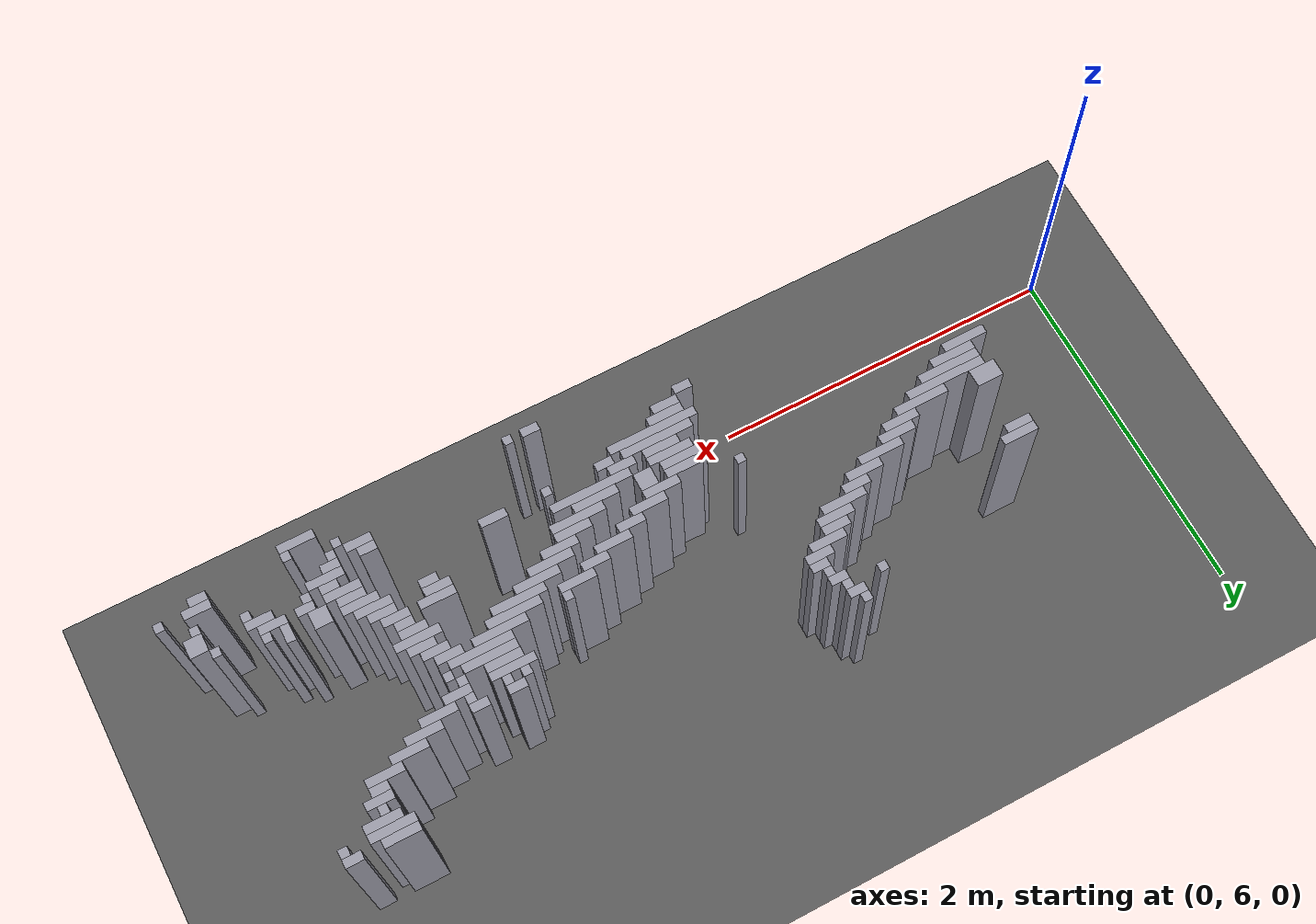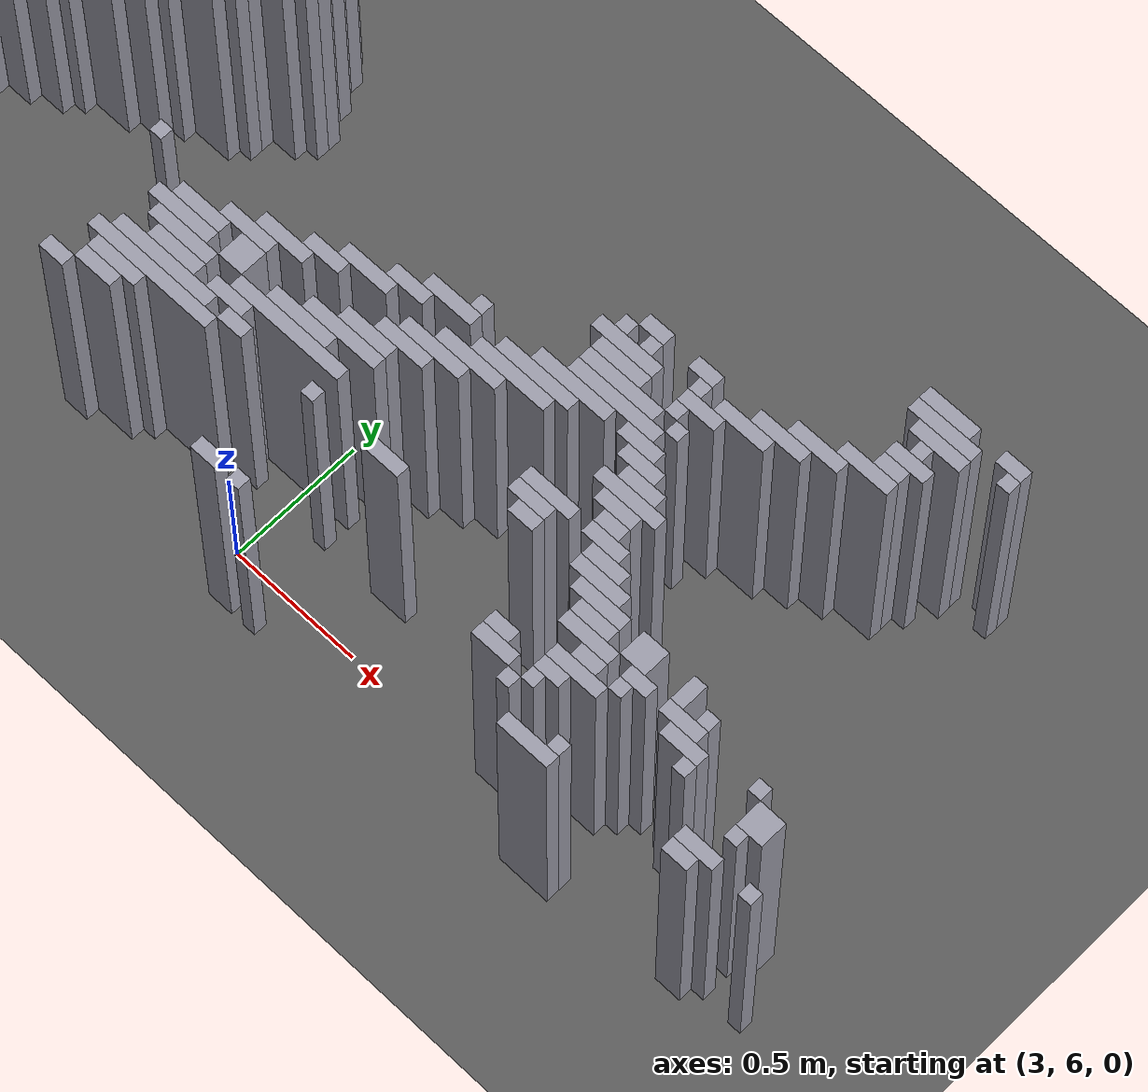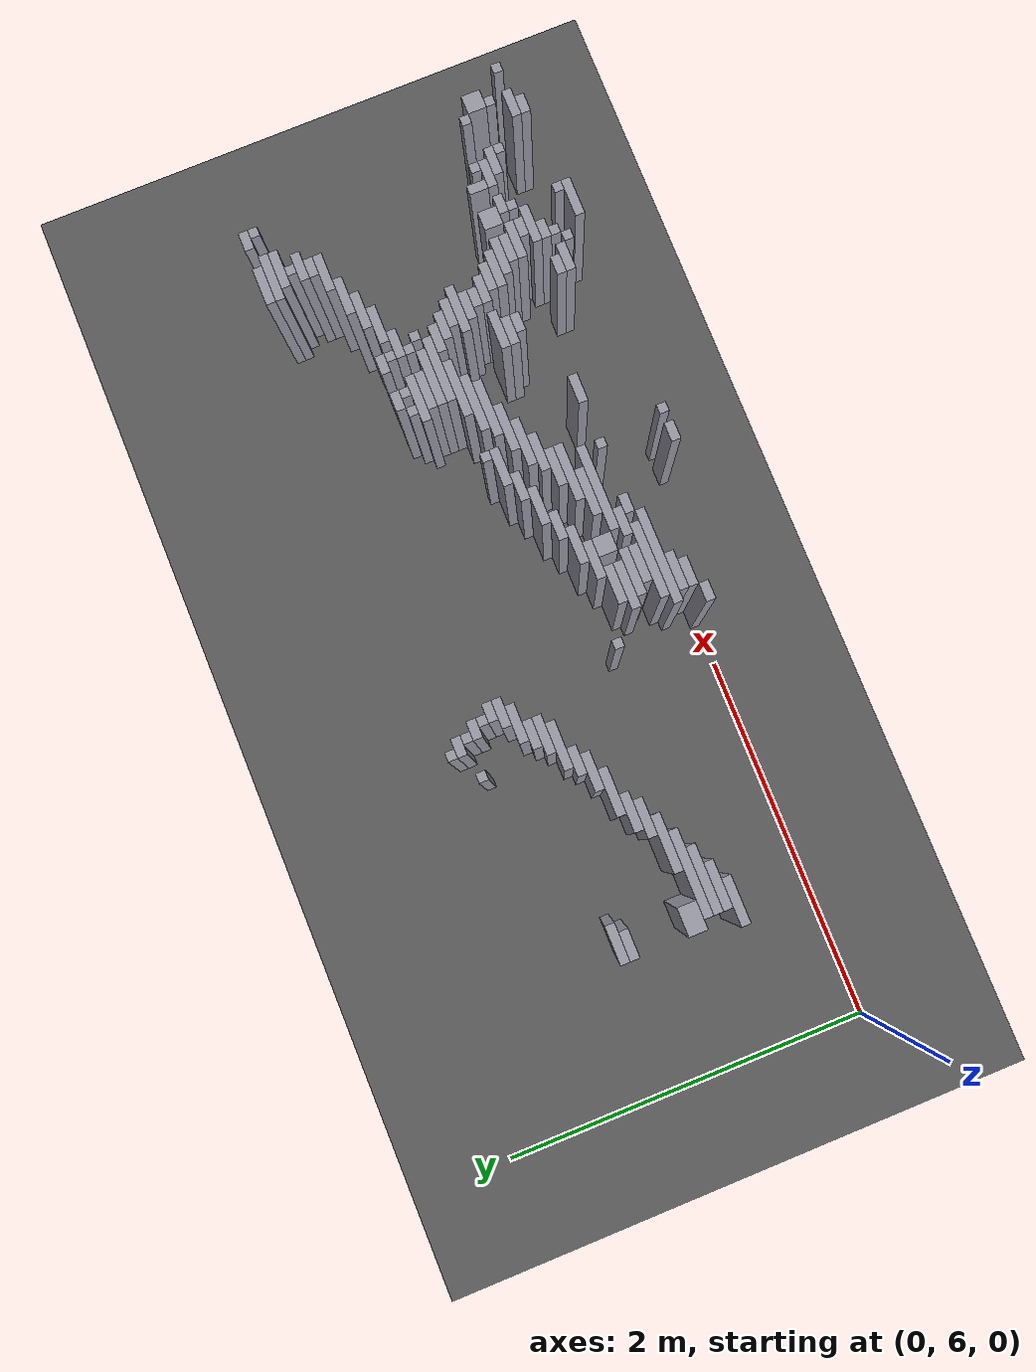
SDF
<sdf version="1.8">
 <world name="dimi">
  <model name="ground">
   <static>true</static>
   <link name="ground_link">
    <collision name="c"><geometry><plane><normal>0 0 1</normal><size>60 60</size></plane></geometry></collision>
    <visual name="v">
     <geometry><plane><normal>0 0 1</normal><size>60 60</size></plane></geometry>
     <material><ambient>0.3 0.3 0.3 1</ambient><diffuse>0.35 0.35 0.35 1</diffuse></material>
    </visual>
   </link>
  </model>
  <model name="walls">
   <static>true</static>
   <link name="wall_292">
    <pose>2.0080 7.4700 0.5000 0 0 0</pose>
    <collision name="c"><geometry><box><size>0.0500 0.0500 1.0000</size></box></geometry></collision>
    <visual name="v">
     <geometry><box><size>0.0500 0.0500 1.0000</size></box></geometry>
     <material><ambient>0.5 0.5 0.55 1</ambient><diffuse>0.6 0.6 0.65 1</diffuse></material>
    </visual>
   </link>
   <link name="wall_293">
    <pose>4.5330 7.4700 0.5000 0 0 0</pose>
    <collision name="c"><geometry><box><size>0.2000 0.0500 1.0000</size></box></geometry></collision>
    <visual name="v">
     <geometry><box><size>0.2000 0.0500 1.0000</size></box></geometry>
     <material><ambient>0.5 0.5 0.55 1</ambient><diffuse>0.6 0.6 0.65 1</diffuse></material>
    </visual>
   </link>
   <link name="wall_294">
    <pose>4.7830 7.4700 0.5000 0 0 0</pose>
    <collision name="c"><geometry><box><size>0.1000 0.0500 1.0000</size></box></geometry></collision>
    <visual name="v">
     <geometry><box><size>0.1000 0.0500 1.0000</size></box></geometry>
     <material><ambient>0.5 0.5 0.55 1</ambient><diffuse>0.6 0.6 0.65 1</diffuse></material>
    </visual>
   </link>
   <link name="wall_300">
    <pose>2.0330 7.4200 0.5000 0 0 0</pose>
    <collision name="c"><geometry><box><size>0.1000 0.0500 1.0000</size></box></geometry></collision>
    <visual name="v">
     <geometry><box><size>0.1000 0.0500 1.0000</size></box></geometry>
     <material><ambient>0.5 0.5 0.55 1</ambient><diffuse>0.6 0.6 0.65 1</diffuse></material>
    </visual>
   </link>
   <link name="wall_301">
    <pose>4.5580 7.4200 0.5000 0 0 0</pose>
    <collision name="c"><geometry><box><size>0.2500 0.0500 1.0000</size></box></geometry></collision>
    <visual name="v">
     <geometry><box><size>0.2500 0.0500 1.0000</size></box></geometry>
     <material><ambient>0.5 0.5 0.55 1</ambient><diffuse>0.6 0.6 0.65 1</diffuse></material>
    </visual>
   </link>
   <link name="wall_302">
    <pose>4.8080 7.4200 0.5000 0 0 0</pose>
    <collision name="c"><geometry><box><size>0.0500 0.0500 1.0000</size></box></geometry></collision>
    <visual name="v">
     <geometry><box><size>0.0500 0.0500 1.0000</size></box></geometry>
     <material><ambient>0.5 0.5 0.55 1</ambient><diffuse>0.6 0.6 0.65 1</diffuse></material>
    </visual>
   </link>
   <link name="wall_305">
    <pose>1.8580 7.3700 0.5000 0 0 0</pose>
    <collision name="c"><geometry><box><size>0.0500 0.0500 1.0000</size></box></geometry></collision>
    <visual name="v">
     <geometry><box><size>0.0500 0.0500 1.0000</size></box></geometry>
     <material><ambient>0.5 0.5 0.55 1</ambient><diffuse>0.6 0.6 0.65 1</diffuse></material>
    </visual>
   </link>
   <link name="wall_306">
    <pose>2.0580 7.3700 0.5000 0 0 0</pose>
    <collision name="c"><geometry><box><size>0.0500 0.0500 1.0000</size></box></geometry></collision>
    <visual name="v">
     <geometry><box><size>0.0500 0.0500 1.0000</size></box></geometry>
     <material><ambient>0.5 0.5 0.55 1</ambient><diffuse>0.6 0.6 0.65 1</diffuse></material>
    </visual>
   </link>
   <link name="wall_307">
    <pose>4.5830 7.3700 0.5000 0 0 0</pose>
    <collision name="c"><geometry><box><size>0.2000 0.0500 1.0000</size></box></geometry></collision>
    <visual name="v">
     <geometry><box><size>0.2000 0.0500 1.0000</size></box></geometry>
     <material><ambient>0.5 0.5 0.55 1</ambient><diffuse>0.6 0.6 0.65 1</diffuse></material>
    </visual>
   </link>
   <link name="wall_313">
    <pose>2.0830 7.3200 0.5000 0 0 0</pose>
    <collision name="c"><geometry><box><size>0.1000 0.0500 1.0000</size></box></geometry></collision>
    <visual name="v">
     <geometry><box><size>0.1000 0.0500 1.0000</size></box></geometry>
     <material><ambient>0.5 0.5 0.55 1</ambient><diffuse>0.6 0.6 0.65 1</diffuse></material>
    </visual>
   </link>
   <link name="wall_314">
    <pose>4.5580 7.3200 0.5000 0 0 0</pose>
    <collision name="c"><geometry><box><size>0.0500 0.0500 1.0000</size></box></geometry></collision>
    <visual name="v">
     <geometry><box><size>0.0500 0.0500 1.0000</size></box></geometry>
     <material><ambient>0.5 0.5 0.55 1</ambient><diffuse>0.6 0.6 0.65 1</diffuse></material>
    </visual>
   </link>
   <link name="wall_319">
    <pose>2.1080 7.2700 0.5000 0 0 0</pose>
    <collision name="c"><geometry><box><size>0.0500 0.0500 1.0000</size></box></geometry></collision>
    <visual name="v">
     <geometry><box><size>0.0500 0.0500 1.0000</size></box></geometry>
     <material><ambient>0.5 0.5 0.55 1</ambient><diffuse>0.6 0.6 0.65 1</diffuse></material>
    </visual>
   </link>
   <link name="wall_320">
    <pose>4.5580 7.2700 0.5000 0 0 0</pose>
    <collision name="c"><geometry><box><size>0.1500 0.0500 1.0000</size></box></geometry></collision>
    <visual name="v">
     <geometry><box><size>0.1500 0.0500 1.0000</size></box></geometry>
     <material><ambient>0.5 0.5 0.55 1</ambient><diffuse>0.6 0.6 0.65 1</diffuse></material>
    </visual>
   </link>
   <link name="wall_324">
    <pose>2.1330 7.2200 0.5000 0 0 0</pose>
    <collision name="c"><geometry><box><size>0.1000 0.0500 1.0000</size></box></geometry></collision>
    <visual name="v">
     <geometry><box><size>0.1000 0.0500 1.0000</size></box></geometry>
     <material><ambient>0.5 0.5 0.55 1</ambient><diffuse>0.6 0.6 0.65 1</diffuse></material>
    </visual>
   </link>
   <link name="wall_325">
    <pose>4.5330 7.2200 0.5000 0 0 0</pose>
    <collision name="c"><geometry><box><size>0.1000 0.0500 1.0000</size></box></geometry></collision>
    <visual name="v">
     <geometry><box><size>0.1000 0.0500 1.0000</size></box></geometry>
     <material><ambient>0.5 0.5 0.55 1</ambient><diffuse>0.6 0.6 0.65 1</diffuse></material>
    </visual>
   </link>
   <link name="wall_331">
    <pose>2.1080 7.1700 0.5000 0 0 0</pose>
    <collision name="c"><geometry><box><size>0.1500 0.0500 1.0000</size></box></geometry></collision>
    <visual name="v">
     <geometry><box><size>0.1500 0.0500 1.0000</size></box></geometry>
     <material><ambient>0.5 0.5 0.55 1</ambient><diffuse>0.6 0.6 0.65 1</diffuse></material>
    </visual>
   </link>
   <link name="wall_332">
    <pose>4.4830 7.1700 0.5000 0 0 0</pose>
    <collision name="c"><geometry><box><size>0.2000 0.0500 1.0000</size></box></geometry></collision>
    <visual name="v">
     <geometry><box><size>0.2000 0.0500 1.0000</size></box></geometry>
     <material><ambient>0.5 0.5 0.55 1</ambient><diffuse>0.6 0.6 0.65 1</diffuse></material>
    </visual>
   </link>
   <link name="wall_334">
    <pose>2.0330 7.1200 0.5000 0 0 0</pose>
    <collision name="c"><geometry><box><size>0.2000 0.0500 1.0000</size></box></geometry></collision>
    <visual name="v">
     <geometry><box><size>0.2000 0.0500 1.0000</size></box></geometry>
     <material><ambient>0.5 0.5 0.55 1</ambient><diffuse>0.6 0.6 0.65 1</diffuse></material>
    </visual>
   </link>
   <link name="wall_335">
    <pose>4.3330 7.1200 0.5000 0 0 0</pose>
    <collision name="c"><geometry><box><size>0.2000 0.0500 1.0000</size></box></geometry></collision>
    <visual name="v">
     <geometry><box><size>0.2000 0.0500 1.0000</size></box></geometry>
     <material><ambient>0.5 0.5 0.55 1</ambient><diffuse>0.6 0.6 0.65 1</diffuse></material>
    </visual>
   </link>
   <link name="wall_338">
    <pose>0.8830 7.0700 0.5000 0 0 0</pose>
    <collision name="c"><geometry><box><size>0.2000 0.0500 1.0000</size></box></geometry></collision>
    <visual name="v">
     <geometry><box><size>0.2000 0.0500 1.0000</size></box></geometry>
     <material><ambient>0.5 0.5 0.55 1</ambient><diffuse>0.6 0.6 0.65 1</diffuse></material>
    </visual>
   </link>
   <link name="wall_339">
    <pose>1.9580 7.0700 0.5000 0 0 0</pose>
    <collision name="c"><geometry><box><size>0.1500 0.0500 1.0000</size></box></geometry></collision>
    <visual name="v">
     <geometry><box><size>0.1500 0.0500 1.0000</size></box></geometry>
     <material><ambient>0.5 0.5 0.55 1</ambient><diffuse>0.6 0.6 0.65 1</diffuse></material>
    </visual>
   </link>
   <link name="wall_340">
    <pose>3.7330 7.0700 0.5000 0 0 0</pose>
    <collision name="c"><geometry><box><size>0.1000 0.0500 1.0000</size></box></geometry></collision>
    <visual name="v">
     <geometry><box><size>0.1000 0.0500 1.0000</size></box></geometry>
     <material><ambient>0.5 0.5 0.55 1</ambient><diffuse>0.6 0.6 0.65 1</diffuse></material>
    </visual>
   </link>
   <link name="wall_341">
    <pose>3.9330 7.0700 0.5000 0 0 0</pose>
    <collision name="c"><geometry><box><size>0.1000 0.0500 1.0000</size></box></geometry></collision>
    <visual name="v">
     <geometry><box><size>0.1000 0.0500 1.0000</size></box></geometry>
     <material><ambient>0.5 0.5 0.55 1</ambient><diffuse>0.6 0.6 0.65 1</diffuse></material>
    </visual>
   </link>
   <link name="wall_342">
    <pose>4.2330 7.0700 0.5000 0 0 0</pose>
    <collision name="c"><geometry><box><size>0.2000 0.0500 1.0000</size></box></geometry></collision>
    <visual name="v">
     <geometry><box><size>0.2000 0.0500 1.0000</size></box></geometry>
     <material><ambient>0.5 0.5 0.55 1</ambient><diffuse>0.6 0.6 0.65 1</diffuse></material>
    </visual>
   </link>
   <link name="wall_348">
    <pose>0.8580 7.0200 0.5000 0 0 0</pose>
    <collision name="c"><geometry><box><size>0.1500 0.0500 1.0000</size></box></geometry></collision>
    <visual name="v">
     <geometry><box><size>0.1500 0.0500 1.0000</size></box></geometry>
     <material><ambient>0.5 0.5 0.55 1</ambient><diffuse>0.6 0.6 0.65 1</diffuse></material>
    </visual>
   </link>
   <link name="wall_349">
    <pose>1.9330 7.0200 0.5000 0 0 0</pose>
    <collision name="c"><geometry><box><size>0.2000 0.0500 1.0000</size></box></geometry></collision>
    <visual name="v">
     <geometry><box><size>0.2000 0.0500 1.0000</size></box></geometry>
     <material><ambient>0.5 0.5 0.55 1</ambient><diffuse>0.6 0.6 0.65 1</diffuse></material>
    </visual>
   </link>
   <link name="wall_350">
    <pose>3.6580 7.0200 0.5000 0 0 0</pose>
    <collision name="c"><geometry><box><size>0.0500 0.0500 1.0000</size></box></geometry></collision>
    <visual name="v">
     <geometry><box><size>0.0500 0.0500 1.0000</size></box></geometry>
     <material><ambient>0.5 0.5 0.55 1</ambient><diffuse>0.6 0.6 0.65 1</diffuse></material>
    </visual>
   </link>
   <link name="wall_351">
    <pose>3.7580 7.0200 0.5000 0 0 0</pose>
    <collision name="c"><geometry><box><size>0.0500 0.0500 1.0000</size></box></geometry></collision>
    <visual name="v">
     <geometry><box><size>0.0500 0.0500 1.0000</size></box></geometry>
     <material><ambient>0.5 0.5 0.55 1</ambient><diffuse>0.6 0.6 0.65 1</diffuse></material>
    </visual>
   </link>
   <link name="wall_352">
    <pose>3.9580 7.0200 0.5000 0 0 0</pose>
    <collision name="c"><geometry><box><size>0.0500 0.0500 1.0000</size></box></geometry></collision>
    <visual name="v">
     <geometry><box><size>0.0500 0.0500 1.0000</size></box></geometry>
     <material><ambient>0.5 0.5 0.55 1</ambient><diffuse>0.6 0.6 0.65 1</diffuse></material>
    </visual>
   </link>
   <link name="wall_353">
    <pose>4.1330 7.0200 0.5000 0 0 0</pose>
    <collision name="c"><geometry><box><size>0.2000 0.0500 1.0000</size></box></geometry></collision>
    <visual name="v">
     <geometry><box><size>0.2000 0.0500 1.0000</size></box></geometry>
     <material><ambient>0.5 0.5 0.55 1</ambient><diffuse>0.6 0.6 0.65 1</diffuse></material>
    </visual>
   </link>
   <link name="wall_360">
    <pose>1.8580 6.9700 0.5000 0 0 0</pose>
    <collision name="c"><geometry><box><size>0.2500 0.0500 1.0000</size></box></geometry></collision>
    <visual name="v">
     <geometry><box><size>0.2500 0.0500 1.0000</size></box></geometry>
     <material><ambient>0.5 0.5 0.55 1</ambient><diffuse>0.6 0.6 0.65 1</diffuse></material>
    </visual>
   </link>
   <link name="wall_361">
    <pose>3.7080 6.9700 0.5000 0 0 0</pose>
    <collision name="c"><geometry><box><size>0.2500 0.0500 1.0000</size></box></geometry></collision>
    <visual name="v">
     <geometry><box><size>0.2500 0.0500 1.0000</size></box></geometry>
     <material><ambient>0.5 0.5 0.55 1</ambient><diffuse>0.6 0.6 0.65 1</diffuse></material>
    </visual>
   </link>
   <link name="wall_362">
    <pose>4.0080 6.9700 0.5000 0 0 0</pose>
    <collision name="c"><geometry><box><size>0.1500 0.0500 1.0000</size></box></geometry></collision>
    <visual name="v">
     <geometry><box><size>0.1500 0.0500 1.0000</size></box></geometry>
     <material><ambient>0.5 0.5 0.55 1</ambient><diffuse>0.6 0.6 0.65 1</diffuse></material>
    </visual>
   </link>
   <link name="wall_368">
    <pose>1.7580 6.9200 0.5000 0 0 0</pose>
    <collision name="c"><geometry><box><size>0.1500 0.0500 1.0000</size></box></geometry></collision>
    <visual name="v">
     <geometry><box><size>0.1500 0.0500 1.0000</size></box></geometry>
     <material><ambient>0.5 0.5 0.55 1</ambient><diffuse>0.6 0.6 0.65 1</diffuse></material>
    </visual>
   </link>
   <link name="wall_369">
    <pose>3.7330 6.9200 0.5000 0 0 0</pose>
    <collision name="c"><geometry><box><size>0.2000 0.0500 1.0000</size></box></geometry></collision>
    <visual name="v">
     <geometry><box><size>0.2000 0.0500 1.0000</size></box></geometry>
     <material><ambient>0.5 0.5 0.55 1</ambient><diffuse>0.6 0.6 0.65 1</diffuse></material>
    </visual>
   </link>
   <link name="wall_370">
    <pose>3.9580 6.9200 0.5000 0 0 0</pose>
    <collision name="c"><geometry><box><size>0.0500 0.0500 1.0000</size></box></geometry></collision>
    <visual name="v">
     <geometry><box><size>0.0500 0.0500 1.0000</size></box></geometry>
     <material><ambient>0.5 0.5 0.55 1</ambient><diffuse>0.6 0.6 0.65 1</diffuse></material>
    </visual>
   </link>
   <link name="wall_374">
    <pose>1.6830 6.8700 0.5000 0 0 0</pose>
    <collision name="c"><geometry><box><size>0.2000 0.0500 1.0000</size></box></geometry></collision>
    <visual name="v">
     <geometry><box><size>0.2000 0.0500 1.0000</size></box></geometry>
     <material><ambient>0.5 0.5 0.55 1</ambient><diffuse>0.6 0.6 0.65 1</diffuse></material>
    </visual>
   </link>
   <link name="wall_375">
    <pose>3.7830 6.8700 0.5000 0 0 0</pose>
    <collision name="c"><geometry><box><size>0.3000 0.0500 1.0000</size></box></geometry></collision>
    <visual name="v">
     <geometry><box><size>0.3000 0.0500 1.0000</size></box></geometry>
     <material><ambient>0.5 0.5 0.55 1</ambient><diffuse>0.6 0.6 0.65 1</diffuse></material>
    </visual>
   </link>
   <link name="wall_376">
    <pose>4.0080 6.8700 0.5000 0 0 0</pose>
    <collision name="c"><geometry><box><size>0.0500 0.0500 1.0000</size></box></geometry></collision>
    <visual name="v">
     <geometry><box><size>0.0500 0.0500 1.0000</size></box></geometry>
     <material><ambient>0.5 0.5 0.55 1</ambient><diffuse>0.6 0.6 0.65 1</diffuse></material>
    </visual>
   </link>
   <link name="wall_382">
    <pose>1.5580 6.8200 0.5000 0 0 0</pose>
    <collision name="c"><geometry><box><size>0.2500 0.0500 1.0000</size></box></geometry></collision>
    <visual name="v">
     <geometry><box><size>0.2500 0.0500 1.0000</size></box></geometry>
     <material><ambient>0.5 0.5 0.55 1</ambient><diffuse>0.6 0.6 0.65 1</diffuse></material>
    </visual>
   </link>
   <link name="wall_383">
    <pose>3.8080 6.8200 0.5000 0 0 0</pose>
    <collision name="c"><geometry><box><size>0.3500 0.0500 1.0000</size></box></geometry></collision>
    <visual name="v">
     <geometry><box><size>0.3500 0.0500 1.0000</size></box></geometry>
     <material><ambient>0.5 0.5 0.55 1</ambient><diffuse>0.6 0.6 0.65 1</diffuse></material>
    </visual>
   </link>
   <link name="wall_388">
    <pose>1.4330 6.7700 0.5000 0 0 0</pose>
    <collision name="c"><geometry><box><size>0.2000 0.0500 1.0000</size></box></geometry></collision>
    <visual name="v">
     <geometry><box><size>0.2000 0.0500 1.0000</size></box></geometry>
     <material><ambient>0.5 0.5 0.55 1</ambient><diffuse>0.6 0.6 0.65 1</diffuse></material>
    </visual>
   </link>
   <link name="wall_389">
    <pose>3.3080 6.7700 0.5000 0 0 0</pose>
    <collision name="c"><geometry><box><size>0.0500 0.0500 1.0000</size></box></geometry></collision>
    <visual name="v">
     <geometry><box><size>0.0500 0.0500 1.0000</size></box></geometry>
     <material><ambient>0.5 0.5 0.55 1</ambient><diffuse>0.6 0.6 0.65 1</diffuse></material>
    </visual>
   </link>
   <link name="wall_390">
    <pose>3.6830 6.7700 0.5000 0 0 0</pose>
    <collision name="c"><geometry><box><size>0.3000 0.0500 1.0000</size></box></geometry></collision>
    <visual name="v">
     <geometry><box><size>0.3000 0.0500 1.0000</size></box></geometry>
     <material><ambient>0.5 0.5 0.55 1</ambient><diffuse>0.6 0.6 0.65 1</diffuse></material>
    </visual>
   </link>
   <link name="wall_391">
    <pose>3.9580 6.7700 0.5000 0 0 0</pose>
    <collision name="c"><geometry><box><size>0.1500 0.0500 1.0000</size></box></geometry></collision>
    <visual name="v">
     <geometry><box><size>0.1500 0.0500 1.0000</size></box></geometry>
     <material><ambient>0.5 0.5 0.55 1</ambient><diffuse>0.6 0.6 0.65 1</diffuse></material>
    </visual>
   </link>
   <link name="wall_397">
    <pose>0.8580 6.6950 0.5000 0 0 0</pose>
    <collision name="c"><geometry><box><size>0.1500 0.1000 1.0000</size></box></geometry></collision>
    <visual name="v">
     <geometry><box><size>0.1500 0.1000 1.0000</size></box></geometry>
     <material><ambient>0.5 0.5 0.55 1</ambient><diffuse>0.6 0.6 0.65 1</diffuse></material>
    </visual>
   </link>
   <link name="wall_398">
    <pose>1.3830 6.7200 0.5000 0 0 0</pose>
    <collision name="c"><geometry><box><size>0.2000 0.0500 1.0000</size></box></geometry></collision>
    <visual name="v">
     <geometry><box><size>0.2000 0.0500 1.0000</size></box></geometry>
     <material><ambient>0.5 0.5 0.55 1</ambient><diffuse>0.6 0.6 0.65 1</diffuse></material>
    </visual>
   </link>
   <link name="wall_399">
    <pose>3.2330 6.7200 0.5000 0 0 0</pose>
    <collision name="c"><geometry><box><size>0.2000 0.0500 1.0000</size></box></geometry></collision>
    <visual name="v">
     <geometry><box><size>0.2000 0.0500 1.0000</size></box></geometry>
     <material><ambient>0.5 0.5 0.55 1</ambient><diffuse>0.6 0.6 0.65 1</diffuse></material>
    </visual>
   </link>
   <link name="wall_400">
    <pose>3.5830 6.7200 0.5000 0 0 0</pose>
    <collision name="c"><geometry><box><size>0.3000 0.0500 1.0000</size></box></geometry></collision>
    <visual name="v">
     <geometry><box><size>0.3000 0.0500 1.0000</size></box></geometry>
     <material><ambient>0.5 0.5 0.55 1</ambient><diffuse>0.6 0.6 0.65 1</diffuse></material>
    </visual>
   </link>
   <link name="wall_401">
    <pose>4.0080 6.7200 0.5000 0 0 0</pose>
    <collision name="c"><geometry><box><size>0.1500 0.0500 1.0000</size></box></geometry></collision>
    <visual name="v">
     <geometry><box><size>0.1500 0.0500 1.0000</size></box></geometry>
     <material><ambient>0.5 0.5 0.55 1</ambient><diffuse>0.6 0.6 0.65 1</diffuse></material>
    </visual>
   </link>
   <link name="wall_411">
    <pose>1.2330 6.6700 0.5000 0 0 0</pose>
    <collision name="c"><geometry><box><size>0.3000 0.0500 1.0000</size></box></geometry></collision>
    <visual name="v">
     <geometry><box><size>0.3000 0.0500 1.0000</size></box></geometry>
     <material><ambient>0.5 0.5 0.55 1</ambient><diffuse>0.6 0.6 0.65 1</diffuse></material>
    </visual>
   </link>
   <link name="wall_412">
    <pose>3.1080 6.6700 0.5000 0 0 0</pose>
    <collision name="c"><geometry><box><size>0.1500 0.0500 1.0000</size></box></geometry></collision>
    <visual name="v">
     <geometry><box><size>0.1500 0.0500 1.0000</size></box></geometry>
     <material><ambient>0.5 0.5 0.55 1</ambient><diffuse>0.6 0.6 0.65 1</diffuse></material>
    </visual>
   </link>
   <link name="wall_413">
    <pose>3.5330 6.6700 0.5000 0 0 0</pose>
    <collision name="c"><geometry><box><size>0.3000 0.0500 1.0000</size></box></geometry></collision>
    <visual name="v">
     <geometry><box><size>0.3000 0.0500 1.0000</size></box></geometry>
     <material><ambient>0.5 0.5 0.55 1</ambient><diffuse>0.6 0.6 0.65 1</diffuse></material>
    </visual>
   </link>
   <link name="wall_414">
    <pose>4.0580 6.6700 0.5000 0 0 0</pose>
    <collision name="c"><geometry><box><size>0.1500 0.0500 1.0000</size></box></geometry></collision>
    <visual name="v">
     <geometry><box><size>0.1500 0.0500 1.0000</size></box></geometry>
     <material><ambient>0.5 0.5 0.55 1</ambient><diffuse>0.6 0.6 0.65 1</diffuse></material>
    </visual>
   </link>
   <link name="wall_421">
    <pose>1.0580 6.6200 0.5000 0 0 0</pose>
    <collision name="c"><geometry><box><size>0.4500 0.0500 1.0000</size></box></geometry></collision>
    <visual name="v">
     <geometry><box><size>0.4500 0.0500 1.0000</size></box></geometry>
     <material><ambient>0.5 0.5 0.55 1</ambient><diffuse>0.6 0.6 0.65 1</diffuse></material>
    </visual>
   </link>
   <link name="wall_422">
    <pose>2.9830 6.6200 0.5000 0 0 0</pose>
    <collision name="c"><geometry><box><size>0.2000 0.0500 1.0000</size></box></geometry></collision>
    <visual name="v">
     <geometry><box><size>0.2000 0.0500 1.0000</size></box></geometry>
     <material><ambient>0.5 0.5 0.55 1</ambient><diffuse>0.6 0.6 0.65 1</diffuse></material>
    </visual>
   </link>
   <link name="wall_423">
    <pose>3.4080 6.6200 0.5000 0 0 0</pose>
    <collision name="c"><geometry><box><size>0.2500 0.0500 1.0000</size></box></geometry></collision>
    <visual name="v">
     <geometry><box><size>0.2500 0.0500 1.0000</size></box></geometry>
     <material><ambient>0.5 0.5 0.55 1</ambient><diffuse>0.6 0.6 0.65 1</diffuse></material>
    </visual>
   </link>
   <link name="wall_424">
    <pose>4.0580 6.6200 0.5000 0 0 0</pose>
    <collision name="c"><geometry><box><size>0.2500 0.0500 1.0000</size></box></geometry></collision>
    <visual name="v">
     <geometry><box><size>0.2500 0.0500 1.0000</size></box></geometry>
     <material><ambient>0.5 0.5 0.55 1</ambient><diffuse>0.6 0.6 0.65 1</diffuse></material>
    </visual>
   </link>
   <link name="wall_430">
    <pose>1.0080 6.5700 0.5000 0 0 0</pose>
    <collision name="c"><geometry><box><size>0.3500 0.0500 1.0000</size></box></geometry></collision>
    <visual name="v">
     <geometry><box><size>0.3500 0.0500 1.0000</size></box></geometry>
     <material><ambient>0.5 0.5 0.55 1</ambient><diffuse>0.6 0.6 0.65 1</diffuse></material>
    </visual>
   </link>
   <link name="wall_431">
    <pose>2.8580 6.5700 0.5000 0 0 0</pose>
    <collision name="c"><geometry><box><size>0.1500 0.0500 1.0000</size></box></geometry></collision>
    <visual name="v">
     <geometry><box><size>0.1500 0.0500 1.0000</size></box></geometry>
     <material><ambient>0.5 0.5 0.55 1</ambient><diffuse>0.6 0.6 0.65 1</diffuse></material>
    </visual>
   </link>
   <link name="wall_432">
    <pose>3.3080 6.5700 0.5000 0 0 0</pose>
    <collision name="c"><geometry><box><size>0.2500 0.0500 1.0000</size></box></geometry></collision>
    <visual name="v">
     <geometry><box><size>0.2500 0.0500 1.0000</size></box></geometry>
     <material><ambient>0.5 0.5 0.55 1</ambient><diffuse>0.6 0.6 0.65 1</diffuse></material>
    </visual>
   </link>
   <link name="wall_433">
    <pose>4.0580 6.5700 0.5000 0 0 0</pose>
    <collision name="c"><geometry><box><size>0.1500 0.0500 1.0000</size></box></geometry></collision>
    <visual name="v">
     <geometry><box><size>0.1500 0.0500 1.0000</size></box></geometry>
     <material><ambient>0.5 0.5 0.55 1</ambient><diffuse>0.6 0.6 0.65 1</diffuse></material>
    </visual>
   </link>
   <link name="wall_439">
    <pose>0.9580 6.5200 0.5000 0 0 0</pose>
    <collision name="c"><geometry><box><size>0.2500 0.0500 1.0000</size></box></geometry></collision>
    <visual name="v">
     <geometry><box><size>0.2500 0.0500 1.0000</size></box></geometry>
     <material><ambient>0.5 0.5 0.55 1</ambient><diffuse>0.6 0.6 0.65 1</diffuse></material>
    </visual>
   </link>
   <link name="wall_440">
    <pose>2.2080 6.5200 0.5000 0 0 0</pose>
    <collision name="c"><geometry><box><size>0.0500 0.0500 1.0000</size></box></geometry></collision>
    <visual name="v">
     <geometry><box><size>0.0500 0.0500 1.0000</size></box></geometry>
     <material><ambient>0.5 0.5 0.55 1</ambient><diffuse>0.6 0.6 0.65 1</diffuse></material>
    </visual>
   </link>
   <link name="wall_441">
    <pose>2.7330 6.5200 0.5000 0 0 0</pose>
    <collision name="c"><geometry><box><size>0.2000 0.0500 1.0000</size></box></geometry></collision>
    <visual name="v">
     <geometry><box><size>0.2000 0.0500 1.0000</size></box></geometry>
     <material><ambient>0.5 0.5 0.55 1</ambient><diffuse>0.6 0.6 0.65 1</diffuse></material>
    </visual>
   </link>
   <link name="wall_442">
    <pose>3.2330 6.5200 0.5000 0 0 0</pose>
    <collision name="c"><geometry><box><size>0.2000 0.0500 1.0000</size></box></geometry></collision>
    <visual name="v">
     <geometry><box><size>0.2000 0.0500 1.0000</size></box></geometry>
     <material><ambient>0.5 0.5 0.55 1</ambient><diffuse>0.6 0.6 0.65 1</diffuse></material>
    </visual>
   </link>
   <link name="wall_443">
    <pose>4.0830 6.5200 0.5000 0 0 0</pose>
    <collision name="c"><geometry><box><size>0.1000 0.0500 1.0000</size></box></geometry></collision>
    <visual name="v">
     <geometry><box><size>0.1000 0.0500 1.0000</size></box></geometry>
     <material><ambient>0.5 0.5 0.55 1</ambient><diffuse>0.6 0.6 0.65 1</diffuse></material>
    </visual>
   </link>
   <link name="wall_448">
    <pose>0.8580 6.4700 0.5000 0 0 0</pose>
    <collision name="c"><geometry><box><size>0.2500 0.0500 1.0000</size></box></geometry></collision>
    <visual name="v">
     <geometry><box><size>0.2500 0.0500 1.0000</size></box></geometry>
     <material><ambient>0.5 0.5 0.55 1</ambient><diffuse>0.6 0.6 0.65 1</diffuse></material>
    </visual>
   </link>
   <link name="wall_449">
    <pose>2.6330 6.4700 0.5000 0 0 0</pose>
    <collision name="c"><geometry><box><size>0.2000 0.0500 1.0000</size></box></geometry></collision>
    <visual name="v">
     <geometry><box><size>0.2000 0.0500 1.0000</size></box></geometry>
     <material><ambient>0.5 0.5 0.55 1</ambient><diffuse>0.6 0.6 0.65 1</diffuse></material>
    </visual>
   </link>
   <link name="wall_450">
    <pose>3.1330 6.4700 0.5000 0 0 0</pose>
    <collision name="c"><geometry><box><size>0.2000 0.0500 1.0000</size></box></geometry></collision>
    <visual name="v">
     <geometry><box><size>0.2000 0.0500 1.0000</size></box></geometry>
     <material><ambient>0.5 0.5 0.55 1</ambient><diffuse>0.6 0.6 0.65 1</diffuse></material>
    </visual>
   </link>
   <link name="wall_451">
    <pose>3.8830 6.4700 0.5000 0 0 0</pose>
    <collision name="c"><geometry><box><size>0.2000 0.0500 1.0000</size></box></geometry></collision>
    <visual name="v">
     <geometry><box><size>0.2000 0.0500 1.0000</size></box></geometry>
     <material><ambient>0.5 0.5 0.55 1</ambient><diffuse>0.6 0.6 0.65 1</diffuse></material>
    </visual>
   </link>
   <link name="wall_452">
    <pose>4.1080 6.4700 0.5000 0 0 0</pose>
    <collision name="c"><geometry><box><size>0.1500 0.0500 1.0000</size></box></geometry></collision>
    <visual name="v">
     <geometry><box><size>0.1500 0.0500 1.0000</size></box></geometry>
     <material><ambient>0.5 0.5 0.55 1</ambient><diffuse>0.6 0.6 0.65 1</diffuse></material>
    </visual>
   </link>
   <link name="wall_459">
    <pose>2.4830 6.4200 0.5000 0 0 0</pose>
    <collision name="c"><geometry><box><size>0.2000 0.0500 1.0000</size></box></geometry></collision>
    <visual name="v">
     <geometry><box><size>0.2000 0.0500 1.0000</size></box></geometry>
     <material><ambient>0.5 0.5 0.55 1</ambient><diffuse>0.6 0.6 0.65 1</diffuse></material>
    </visual>
   </link>
   <link name="wall_460">
    <pose>2.6830 6.3950 0.5000 0 0 0</pose>
    <collision name="c"><geometry><box><size>0.1000 0.1000 1.0000</size></box></geometry></collision>
    <visual name="v">
     <geometry><box><size>0.1000 0.1000 1.0000</size></box></geometry>
     <material><ambient>0.5 0.5 0.55 1</ambient><diffuse>0.6 0.6 0.65 1</diffuse></material>
    </visual>
   </link>
   <link name="wall_461">
    <pose>3.0830 6.4200 0.5000 0 0 0</pose>
    <collision name="c"><geometry><box><size>0.3000 0.0500 1.0000</size></box></geometry></collision>
    <visual name="v">
     <geometry><box><size>0.3000 0.0500 1.0000</size></box></geometry>
     <material><ambient>0.5 0.5 0.55 1</ambient><diffuse>0.6 0.6 0.65 1</diffuse></material>
    </visual>
   </link>
   <link name="wall_462">
    <pose>3.8580 6.4200 0.5000 0 0 0</pose>
    <collision name="c"><geometry><box><size>0.1500 0.0500 1.0000</size></box></geometry></collision>
    <visual name="v">
     <geometry><box><size>0.1500 0.0500 1.0000</size></box></geometry>
     <material><ambient>0.5 0.5 0.55 1</ambient><diffuse>0.6 0.6 0.65 1</diffuse></material>
    </visual>
   </link>
   <link name="wall_463">
    <pose>4.1580 6.4200 0.5000 0 0 0</pose>
    <collision name="c"><geometry><box><size>0.1500 0.0500 1.0000</size></box></geometry></collision>
    <visual name="v">
     <geometry><box><size>0.1500 0.0500 1.0000</size></box></geometry>
     <material><ambient>0.5 0.5 0.55 1</ambient><diffuse>0.6 0.6 0.65 1</diffuse></material>
    </visual>
   </link>
   <link name="wall_468">
    <pose>2.4580 6.3700 0.5000 0 0 0</pose>
    <collision name="c"><geometry><box><size>0.2500 0.0500 1.0000</size></box></geometry></collision>
    <visual name="v">
     <geometry><box><size>0.2500 0.0500 1.0000</size></box></geometry>
     <material><ambient>0.5 0.5 0.55 1</ambient><diffuse>0.6 0.6 0.65 1</diffuse></material>
    </visual>
   </link>
   <link name="wall_469">
    <pose>2.9580 6.3700 0.5000 0 0 0</pose>
    <collision name="c"><geometry><box><size>0.2500 0.0500 1.0000</size></box></geometry></collision>
    <visual name="v">
     <geometry><box><size>0.2500 0.0500 1.0000</size></box></geometry>
     <material><ambient>0.5 0.5 0.55 1</ambient><diffuse>0.6 0.6 0.65 1</diffuse></material>
    </visual>
   </link>
   <link name="wall_470">
    <pose>3.8830 6.3700 0.5000 0 0 0</pose>
    <collision name="c"><geometry><box><size>0.1000 0.0500 1.0000</size></box></geometry></collision>
    <visual name="v">
     <geometry><box><size>0.1000 0.0500 1.0000</size></box></geometry>
     <material><ambient>0.5 0.5 0.55 1</ambient><diffuse>0.6 0.6 0.65 1</diffuse></material>
    </visual>
   </link>
   <link name="wall_471">
    <pose>4.1830 6.3700 0.5000 0 0 0</pose>
    <collision name="c"><geometry><box><size>0.2000 0.0500 1.0000</size></box></geometry></collision>
    <visual name="v">
     <geometry><box><size>0.2000 0.0500 1.0000</size></box></geometry>
     <material><ambient>0.5 0.5 0.55 1</ambient><diffuse>0.6 0.6 0.65 1</diffuse></material>
    </visual>
   </link>
   <link name="wall_476">
    <pose>2.5080 6.3200 0.5000 0 0 0</pose>
    <collision name="c"><geometry><box><size>0.2500 0.0500 1.0000</size></box></geometry></collision>
    <visual name="v">
     <geometry><box><size>0.2500 0.0500 1.0000</size></box></geometry>
     <material><ambient>0.5 0.5 0.55 1</ambient><diffuse>0.6 0.6 0.65 1</diffuse></material>
    </visual>
   </link>
   <link name="wall_477">
    <pose>2.9580 6.3200 0.5000 0 0 0</pose>
    <collision name="c"><geometry><box><size>0.4500 0.0500 1.0000</size></box></geometry></collision>
    <visual name="v">
     <geometry><box><size>0.4500 0.0500 1.0000</size></box></geometry>
     <material><ambient>0.5 0.5 0.55 1</ambient><diffuse>0.6 0.6 0.65 1</diffuse></material>
    </visual>
   </link>
   <link name="wall_478">
    <pose>4.2330 6.3200 0.5000 0 0 0</pose>
    <collision name="c"><geometry><box><size>0.2000 0.0500 1.0000</size></box></geometry></collision>
    <visual name="v">
     <geometry><box><size>0.2000 0.0500 1.0000</size></box></geometry>
     <material><ambient>0.5 0.5 0.55 1</ambient><diffuse>0.6 0.6 0.65 1</diffuse></material>
    </visual>
   </link>
   <link name="wall_479">
    <pose>4.4330 6.2950 0.5000 0 0 0</pose>
    <collision name="c"><geometry><box><size>0.1000 0.1000 1.0000</size></box></geometry></collision>
    <visual name="v">
     <geometry><box><size>0.1000 0.1000 1.0000</size></box></geometry>
     <material><ambient>0.5 0.5 0.55 1</ambient><diffuse>0.6 0.6 0.65 1</diffuse></material>
    </visual>
   </link>
   <link name="wall_480">
    <pose>4.6080 6.2950 0.5000 0 0 0</pose>
    <collision name="c"><geometry><box><size>0.0500 0.1000 1.0000</size></box></geometry></collision>
    <visual name="v">
     <geometry><box><size>0.0500 0.1000 1.0000</size></box></geometry>
     <material><ambient>0.5 0.5 0.55 1</ambient><diffuse>0.6 0.6 0.65 1</diffuse></material>
    </visual>
   </link>
   <link name="wall_482">
    <pose>2.5330 6.2700 0.5000 0 0 0</pose>
    <collision name="c"><geometry><box><size>0.2000 0.0500 1.0000</size></box></geometry></collision>
    <visual name="v">
     <geometry><box><size>0.2000 0.0500 1.0000</size></box></geometry>
     <material><ambient>0.5 0.5 0.55 1</ambient><diffuse>0.6 0.6 0.65 1</diffuse></material>
    </visual>
   </link>
   <link name="wall_483">
    <pose>2.7580 6.2700 0.5000 0 0 0</pose>
    <collision name="c"><geometry><box><size>0.1500 0.0500 1.0000</size></box></geometry></collision>
    <visual name="v">
     <geometry><box><size>0.1500 0.0500 1.0000</size></box></geometry>
     <material><ambient>0.5 0.5 0.55 1</ambient><diffuse>0.6 0.6 0.65 1</diffuse></material>
    </visual>
   </link>
   <link name="wall_484">
    <pose>4.2580 6.2700 0.5000 0 0 0</pose>
    <collision name="c"><geometry><box><size>0.1500 0.0500 1.0000</size></box></geometry></collision>
    <visual name="v">
     <geometry><box><size>0.1500 0.0500 1.0000</size></box></geometry>
     <material><ambient>0.5 0.5 0.55 1</ambient><diffuse>0.6 0.6 0.65 1</diffuse></material>
    </visual>
   </link>
   <link name="wall_485">
    <pose>4.7080 6.2700 0.5000 0 0 0</pose>
    <collision name="c"><geometry><box><size>0.0500 0.0500 1.0000</size></box></geometry></collision>
    <visual name="v">
     <geometry><box><size>0.0500 0.0500 1.0000</size></box></geometry>
     <material><ambient>0.5 0.5 0.55 1</ambient><diffuse>0.6 0.6 0.65 1</diffuse></material>
    </visual>
   </link>
   <link name="wall_489">
    <pose>2.5330 6.2200 0.5000 0 0 0</pose>
    <collision name="c"><geometry><box><size>0.4000 0.0500 1.0000</size></box></geometry></collision>
    <visual name="v">
     <geometry><box><size>0.4000 0.0500 1.0000</size></box></geometry>
     <material><ambient>0.5 0.5 0.55 1</ambient><diffuse>0.6 0.6 0.65 1</diffuse></material>
    </visual>
   </link>
   <link name="wall_490">
    <pose>2.8330 6.2200 0.5000 0 0 0</pose>
    <collision name="c"><geometry><box><size>0.1000 0.0500 1.0000</size></box></geometry></collision>
    <visual name="v">
     <geometry><box><size>0.1000 0.0500 1.0000</size></box></geometry>
     <material><ambient>0.5 0.5 0.55 1</ambient><diffuse>0.6 0.6 0.65 1</diffuse></material>
    </visual>
   </link>
   <link name="wall_491">
    <pose>3.1580 6.2200 0.5000 0 0 0</pose>
    <collision name="c"><geometry><box><size>0.0500 0.0500 1.0000</size></box></geometry></collision>
    <visual name="v">
     <geometry><box><size>0.0500 0.0500 1.0000</size></box></geometry>
     <material><ambient>0.5 0.5 0.55 1</ambient><diffuse>0.6 0.6 0.65 1</diffuse></material>
    </visual>
   </link>
   <link name="wall_492">
    <pose>3.4580 6.2200 0.5000 0 0 0</pose>
    <collision name="c"><geometry><box><size>0.1500 0.0500 1.0000</size></box></geometry></collision>
    <visual name="v">
     <geometry><box><size>0.1500 0.0500 1.0000</size></box></geometry>
     <material><ambient>0.5 0.5 0.55 1</ambient><diffuse>0.6 0.6 0.65 1</diffuse></material>
    </visual>
   </link>
   <link name="wall_493">
    <pose>4.2830 6.2200 0.5000 0 0 0</pose>
    <collision name="c"><geometry><box><size>0.2000 0.0500 1.0000</size></box></geometry></collision>
    <visual name="v">
     <geometry><box><size>0.2000 0.0500 1.0000</size></box></geometry>
     <material><ambient>0.5 0.5 0.55 1</ambient><diffuse>0.6 0.6 0.65 1</diffuse></material>
    </visual>
   </link>
   <link name="wall_494">
    <pose>4.4830 6.2200 0.5000 0 0 0</pose>
    <collision name="c"><geometry><box><size>0.1000 0.0500 1.0000</size></box></geometry></collision>
    <visual name="v">
     <geometry><box><size>0.1000 0.0500 1.0000</size></box></geometry>
     <material><ambient>0.5 0.5 0.55 1</ambient><diffuse>0.6 0.6 0.65 1</diffuse></material>
    </visual>
   </link>
   <link name="wall_495">
    <pose>4.6580 6.2200 0.5000 0 0 0</pose>
    <collision name="c"><geometry><box><size>0.1500 0.0500 1.0000</size></box></geometry></collision>
    <visual name="v">
     <geometry><box><size>0.1500 0.0500 1.0000</size></box></geometry>
     <material><ambient>0.5 0.5 0.55 1</ambient><diffuse>0.6 0.6 0.65 1</diffuse></material>
    </visual>
   </link>
   <link name="wall_496">
    <pose>4.9580 6.2200 0.5000 0 0 0</pose>
    <collision name="c"><geometry><box><size>0.0500 0.0500 1.0000</size></box></geometry></collision>
    <visual name="v">
     <geometry><box><size>0.0500 0.0500 1.0000</size></box></geometry>
     <material><ambient>0.5 0.5 0.55 1</ambient><diffuse>0.6 0.6 0.65 1</diffuse></material>
    </visual>
   </link>
   <link name="wall_499">
    <pose>2.5330 6.1700 0.5000 0 0 0</pose>
    <collision name="c"><geometry><box><size>0.5000 0.0500 1.0000</size></box></geometry></collision>
    <visual name="v">
     <geometry><box><size>0.5000 0.0500 1.0000</size></box></geometry>
     <material><ambient>0.5 0.5 0.55 1</ambient><diffuse>0.6 0.6 0.65 1</diffuse></material>
    </visual>
   </link>
   <link name="wall_500">
    <pose>4.3330 6.1700 0.5000 0 0 0</pose>
    <collision name="c"><geometry><box><size>0.1000 0.0500 1.0000</size></box></geometry></collision>
    <visual name="v">
     <geometry><box><size>0.1000 0.0500 1.0000</size></box></geometry>
     <material><ambient>0.5 0.5 0.55 1</ambient><diffuse>0.6 0.6 0.65 1</diffuse></material>
    </visual>
   </link>
   <link name="wall_501">
    <pose>4.4580 6.1700 0.5000 0 0 0</pose>
    <collision name="c"><geometry><box><size>0.0500 0.0500 1.0000</size></box></geometry></collision>
    <visual name="v">
     <geometry><box><size>0.0500 0.0500 1.0000</size></box></geometry>
     <material><ambient>0.5 0.5 0.55 1</ambient><diffuse>0.6 0.6 0.65 1</diffuse></material>
    </visual>
   </link>
   <link name="wall_502">
    <pose>4.7080 6.1700 0.5000 0 0 0</pose>
    <collision name="c"><geometry><box><size>0.1500 0.0500 1.0000</size></box></geometry></collision>
    <visual name="v">
     <geometry><box><size>0.1500 0.0500 1.0000</size></box></geometry>
     <material><ambient>0.5 0.5 0.55 1</ambient><diffuse>0.6 0.6 0.65 1</diffuse></material>
    </visual>
   </link>
   <link name="wall_503">
    <pose>5.0330 6.1450 0.5000 0 0 0</pose>
    <collision name="c"><geometry><box><size>0.1000 0.1000 1.0000</size></box></geometry></collision>
    <visual name="v">
     <geometry><box><size>0.1000 0.1000 1.0000</size></box></geometry>
     <material><ambient>0.5 0.5 0.55 1</ambient><diffuse>0.6 0.6 0.65 1</diffuse></material>
    </visual>
   </link>
   <link name="wall_507">
    <pose>2.4330 6.1200 0.5000 0 0 0</pose>
    <collision name="c"><geometry><box><size>0.2000 0.0500 1.0000</size></box></geometry></collision>
    <visual name="v">
     <geometry><box><size>0.2000 0.0500 1.0000</size></box></geometry>
     <material><ambient>0.5 0.5 0.55 1</ambient><diffuse>0.6 0.6 0.65 1</diffuse></material>
    </visual>
   </link>
   <link name="wall_508">
    <pose>4.3330 6.1200 0.5000 0 0 0</pose>
    <collision name="c"><geometry><box><size>0.2000 0.0500 1.0000</size></box></geometry></collision>
    <visual name="v">
     <geometry><box><size>0.2000 0.0500 1.0000</size></box></geometry>
     <material><ambient>0.5 0.5 0.55 1</ambient><diffuse>0.6 0.6 0.65 1</diffuse></material>
    </visual>
   </link>
   <link name="wall_509">
    <pose>4.7580 6.1200 0.5000 0 0 0</pose>
    <collision name="c"><geometry><box><size>0.0500 0.0500 1.0000</size></box></geometry></collision>
    <visual name="v">
     <geometry><box><size>0.0500 0.0500 1.0000</size></box></geometry>
     <material><ambient>0.5 0.5 0.55 1</ambient><diffuse>0.6 0.6 0.65 1</diffuse></material>
    </visual>
   </link>
   <link name="wall_513">
    <pose>2.4080 6.0700 0.5000 0 0 0</pose>
    <collision name="c"><geometry><box><size>0.1500 0.0500 1.0000</size></box></geometry></collision>
    <visual name="v">
     <geometry><box><size>0.1500 0.0500 1.0000</size></box></geometry>
     <material><ambient>0.5 0.5 0.55 1</ambient><diffuse>0.6 0.6 0.65 1</diffuse></material>
    </visual>
   </link>
   <link name="wall_514">
    <pose>4.0830 6.0700 0.5000 0 0 0</pose>
    <collision name="c"><geometry><box><size>0.1000 0.0500 1.0000</size></box></geometry></collision>
    <visual name="v">
     <geometry><box><size>0.1000 0.0500 1.0000</size></box></geometry>
     <material><ambient>0.5 0.5 0.55 1</ambient><diffuse>0.6 0.6 0.65 1</diffuse></material>
    </visual>
   </link>
   <link name="wall_515">
    <pose>4.2830 6.0700 0.5000 0 0 0</pose>
    <collision name="c"><geometry><box><size>0.1000 0.0500 1.0000</size></box></geometry></collision>
    <visual name="v">
     <geometry><box><size>0.1000 0.0500 1.0000</size></box></geometry>
     <material><ambient>0.5 0.5 0.55 1</ambient><diffuse>0.6 0.6 0.65 1</diffuse></material>
    </visual>
   </link>
   <link name="wall_516">
    <pose>5.0080 6.0700 0.5000 0 0 0</pose>
    <collision name="c"><geometry><box><size>0.0500 0.0500 1.0000</size></box></geometry></collision>
    <visual name="v">
     <geometry><box><size>0.0500 0.0500 1.0000</size></box></geometry>
     <material><ambient>0.5 0.5 0.55 1</ambient><diffuse>0.6 0.6 0.65 1</diffuse></material>
    </visual>
   </link>
   <link name="wall_521">
    <pose>2.2830 6.0200 0.5000 0 0 0</pose>
    <collision name="c"><geometry><box><size>0.1000 0.0500 1.0000</size></box></geometry></collision>
    <visual name="v">
     <geometry><box><size>0.1000 0.0500 1.0000</size></box></geometry>
     <material><ambient>0.5 0.5 0.55 1</ambient><diffuse>0.6 0.6 0.65 1</diffuse></material>
    </visual>
   </link>
   <link name="wall_522">
    <pose>4.1080 6.0200 0.5000 0 0 0</pose>
    <collision name="c"><geometry><box><size>0.1500 0.0500 1.0000</size></box></geometry></collision>
    <visual name="v">
     <geometry><box><size>0.1500 0.0500 1.0000</size></box></geometry>
     <material><ambient>0.5 0.5 0.55 1</ambient><diffuse>0.6 0.6 0.65 1</diffuse></material>
    </visual>
   </link>
   <link name="wall_523">
    <pose>4.2580 6.0200 0.5000 0 0 0</pose>
    <collision name="c"><geometry><box><size>0.0500 0.0500 1.0000</size></box></geometry></collision>
    <visual name="v">
     <geometry><box><size>0.0500 0.0500 1.0000</size></box></geometry>
     <material><ambient>0.5 0.5 0.55 1</ambient><diffuse>0.6 0.6 0.65 1</diffuse></material>
    </visual>
   </link>
   <link name="wall_527">
    <pose>4.2080 5.9700 0.5000 0 0 0</pose>
    <collision name="c"><geometry><box><size>0.0500 0.0500 1.0000</size></box></geometry></collision>
    <visual name="v">
     <geometry><box><size>0.0500 0.0500 1.0000</size></box></geometry>
     <material><ambient>0.5 0.5 0.55 1</ambient><diffuse>0.6 0.6 0.65 1</diffuse></material>
    </visual>
   </link>
   <link name="wall_528">
    <pose>4.9580 5.9700 0.5000 0 0 0</pose>
    <collision name="c"><geometry><box><size>0.1500 0.0500 1.0000</size></box></geometry></collision>
    <visual name="v">
     <geometry><box><size>0.1500 0.0500 1.0000</size></box></geometry>
     <material><ambient>0.5 0.5 0.55 1</ambient><diffuse>0.6 0.6 0.65 1</diffuse></material>
    </visual>
   </link>
   <link name="wall_529">
    <pose>5.1580 5.9700 0.5000 0 0 0</pose>
    <collision name="c"><geometry><box><size>0.0500 0.0500 1.0000</size></box></geometry></collision>
    <visual name="v">
     <geometry><box><size>0.0500 0.0500 1.0000</size></box></geometry>
     <material><ambient>0.5 0.5 0.55 1</ambient><diffuse>0.6 0.6 0.65 1</diffuse></material>
    </visual>
   </link>
   <link name="wall_531">
    <pose>4.4580 5.9200 0.5000 0 0 0</pose>
    <collision name="c"><geometry><box><size>0.0500 0.0500 1.0000</size></box></geometry></collision>
    <visual name="v">
     <geometry><box><size>0.0500 0.0500 1.0000</size></box></geometry>
     <material><ambient>0.5 0.5 0.55 1</ambient><diffuse>0.6 0.6 0.65 1</diffuse></material>
    </visual>
   </link>
   <link name="wall_532">
    <pose>4.9330 5.9200 0.5000 0 0 0</pose>
    <collision name="c"><geometry><box><size>0.1000 0.0500 1.0000</size></box></geometry></collision>
    <visual name="v">
     <geometry><box><size>0.1000 0.0500 1.0000</size></box></geometry>
     <material><ambient>0.5 0.5 0.55 1</ambient><diffuse>0.6 0.6 0.65 1</diffuse></material>
    </visual>
   </link>
   <link name="wall_536">
    <pose>3.0830 5.8700 0.5000 0 0 0</pose>
    <collision name="c"><geometry><box><size>0.1000 0.0500 1.0000</size></box></geometry></collision>
    <visual name="v">
     <geometry><box><size>0.1000 0.0500 1.0000</size></box></geometry>
     <material><ambient>0.5 0.5 0.55 1</ambient><diffuse>0.6 0.6 0.65 1</diffuse></material>
    </visual>
   </link>
   <link name="wall_537">
    <pose>3.2080 5.8700 0.5000 0 0 0</pose>
    <collision name="c"><geometry><box><size>0.0500 0.0500 1.0000</size></box></geometry></collision>
    <visual name="v">
     <geometry><box><size>0.0500 0.0500 1.0000</size></box></geometry>
     <material><ambient>0.5 0.5 0.55 1</ambient><diffuse>0.6 0.6 0.65 1</diffuse></material>
    </visual>
   </link>
   <link name="wall_538">
    <pose>4.3830 5.8700 0.5000 0 0 0</pose>
    <collision name="c"><geometry><box><size>0.2000 0.0500 1.0000</size></box></geometry></collision>
    <visual name="v">
     <geometry><box><size>0.2000 0.0500 1.0000</size></box></geometry>
     <material><ambient>0.5 0.5 0.55 1</ambient><diffuse>0.6 0.6 0.65 1</diffuse></material>
    </visual>
   </link>
  </model>
 </world>
</sdf>
